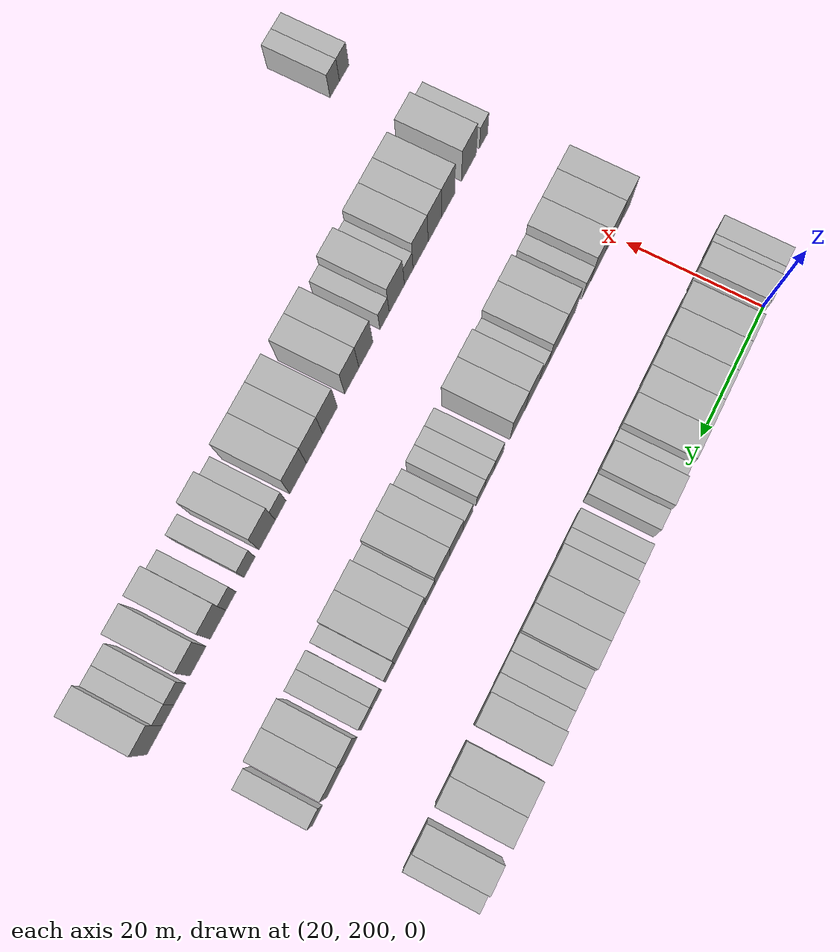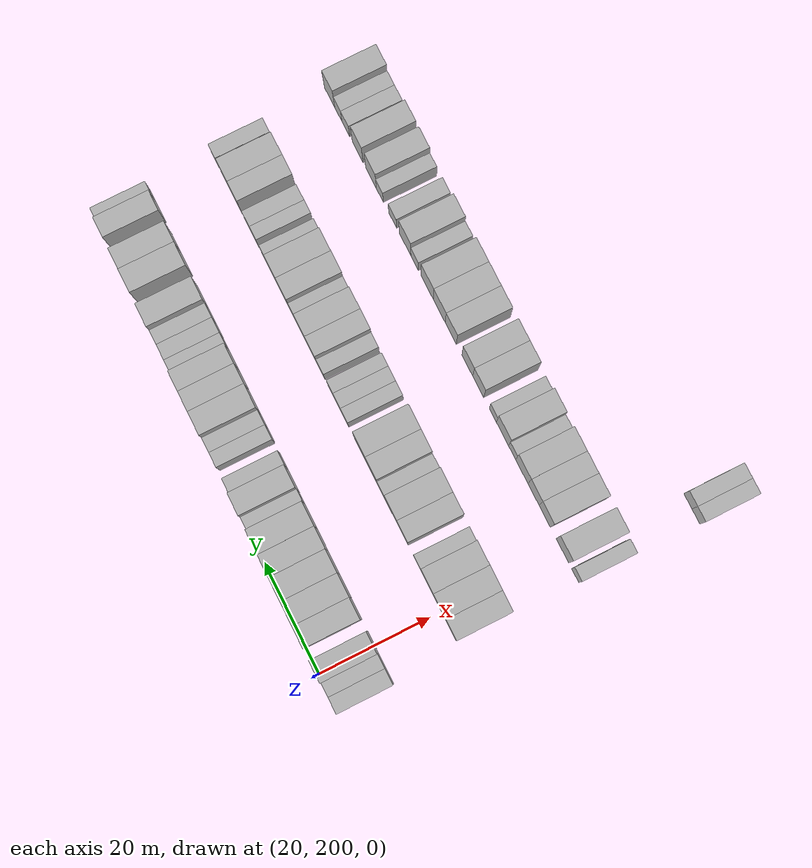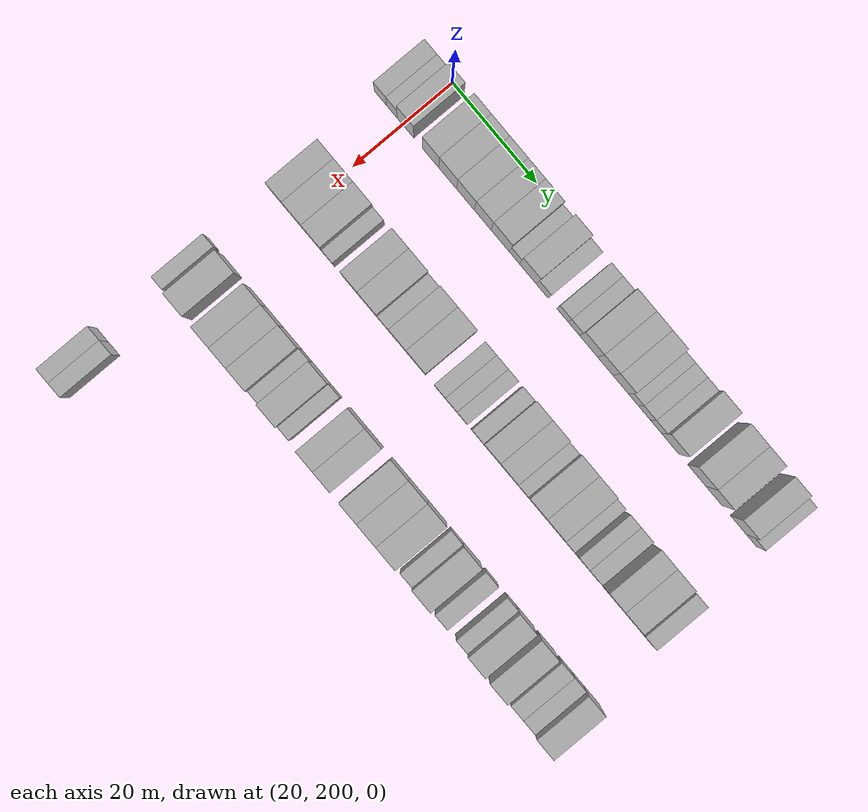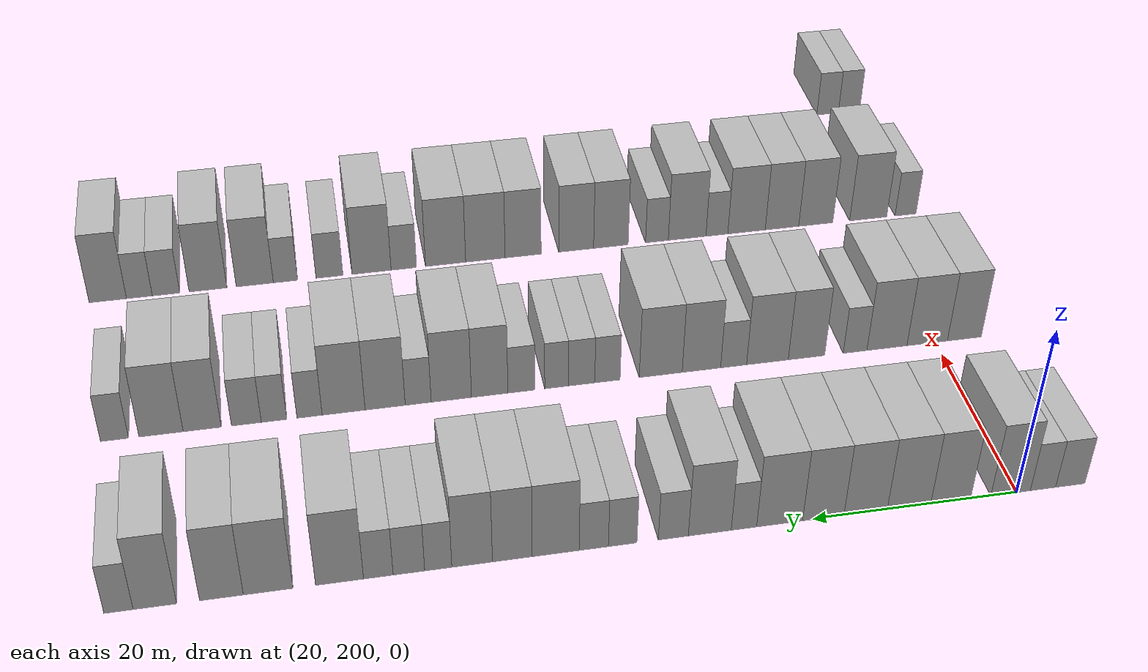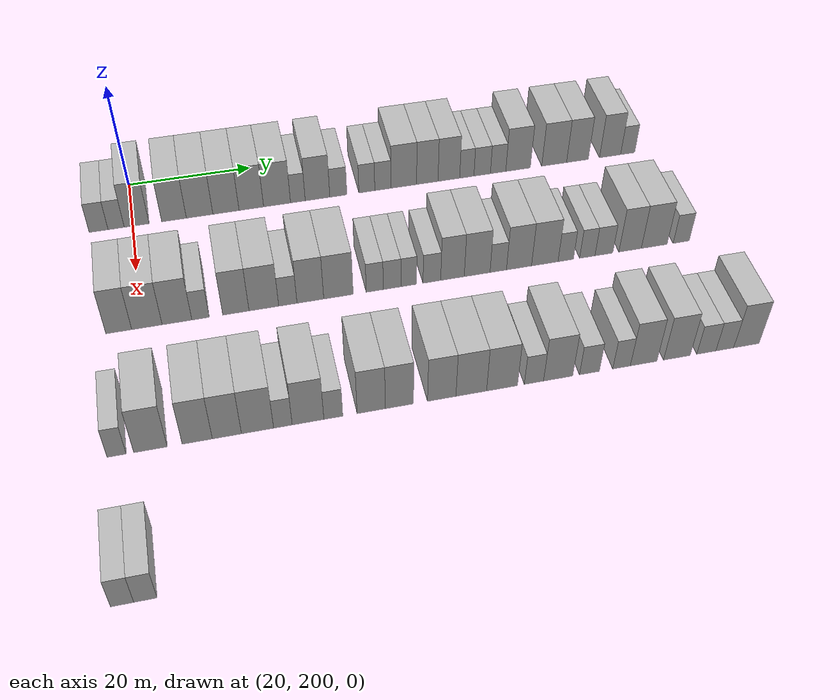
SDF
<sdf version="1.6">
 <world name="default">
  <model name="building_152">
   <static>1</static>
   <pose>25.0000 194.6948 0 0.000000 0.000000 0.000000</pose>
   <link name="link">
    <pose>0 0 3.00 0 0 0</pose>
    <collision name="collision"><geometry><box><size>10.0000 2.9457 6.0000</size></box></geometry></collision>
    <visual name="visual">
     <cast_shadows>0</cast_shadows>
     <geometry><box><size>10.0000 2.9457 6.0000</size></box></geometry>
     <material>
      <script>
       <uri>model://HANNAS_wall/materials/scripts</uri>
       <uri>model://HANNAS_wall/materials/textures</uri>
       <name>vrc/HANNAS_wall</name>
      </script>
     </material>
    </visual>
   </link>
  </model>
  <model name="building_153">
   <static>1</static>
   <pose>25.0000 197.4337 0 0.000000 0.000000 0.000000</pose>
   <link name="link">
    <pose>0 0 3.00 0 0 0</pose>
    <collision name="collision"><geometry><box><size>10.0000 2.5322 6.0000</size></box></geometry></collision>
    <visual name="visual">
     <cast_shadows>0</cast_shadows>
     <geometry><box><size>10.0000 2.5322 6.0000</size></box></geometry>
     <material>
      <script>
       <uri>model://HANNAS_wall/materials/scripts</uri>
       <uri>model://HANNAS_wall/materials/textures</uri>
       <name>vrc/HANNAS_wall</name>
      </script>
     </material>
    </visual>
   </link>
  </model>
  <model name="building_154">
   <static>1</static>
   <pose>25.0000 200.6647 0 0.000000 0.000000 0.000000</pose>
   <link name="link">
    <pose>0 0 4.50 0 0 0</pose>
    <collision name="collision"><geometry><box><size>10.0000 3.9297 9.0000</size></box></geometry></collision>
    <visual name="visual">
     <cast_shadows>0</cast_shadows>
     <geometry><box><size>10.0000 3.9297 9.0000</size></box></geometry>
     <material>
      <script>
       <uri>model://HANNAS_wall/materials/scripts</uri>
       <uri>model://HANNAS_wall/materials/textures</uri>
       <name>vrc/HANNAS_wall</name>
      </script>
     </material>
    </visual>
   </link>
  </model>
  <model name="building_155">
   <static>1</static>
   <pose>25.0000 206.5931 0 0.000000 0.000000 0.000000</pose>
   <link name="link">
    <pose>0 0 4.50 0 0 0</pose>
    <collision name="collision"><geometry><box><size>10.0000 3.9270 9.0000</size></box></geometry></collision>
    <visual name="visual">
     <cast_shadows>0</cast_shadows>
     <geometry><box><size>10.0000 3.9270 9.0000</size></box></geometry>
     <material>
      <script>
       <uri>model://HANNAS_wall/materials/scripts</uri>
       <uri>model://HANNAS_wall/materials/textures</uri>
       <name>vrc/HANNAS_wall</name>
      </script>
     </material>
    </visual>
   </link>
  </model>
  <model name="building_156">
   <static>1</static>
   <pose>25.0000 210.6839 0 0.000000 0.000000 0.000000</pose>
   <link name="link">
    <pose>0 0 4.50 0 0 0</pose>
    <collision name="collision"><geometry><box><size>10.0000 4.2545 9.0000</size></box></geometry></collision>
    <visual name="visual">
     <cast_shadows>0</cast_shadows>
     <geometry><box><size>10.0000 4.2545 9.0000</size></box></geometry>
     <material>
      <script>
       <uri>model://HANNAS_wall/materials/scripts</uri>
       <uri>model://HANNAS_wall/materials/textures</uri>
       <name>vrc/HANNAS_wall</name>
      </script>
     </material>
    </visual>
   </link>
  </model>
  <model name="building_157">
   <static>1</static>
   <pose>25.0000 214.9184 0 0.000000 0.000000 0.000000</pose>
   <link name="link">
    <pose>0 0 4.50 0 0 0</pose>
    <collision name="collision"><geometry><box><size>10.0000 4.2146 9.0000</size></box></geometry></collision>
    <visual name="visual">
     <cast_shadows>0</cast_shadows>
     <geometry><box><size>10.0000 4.2146 9.0000</size></box></geometry>
     <material>
      <script>
       <uri>model://HANNAS_wall/materials/scripts</uri>
       <uri>model://HANNAS_wall/materials/textures</uri>
       <name>vrc/HANNAS_wall</name>
      </script>
     </material>
    </visual>
   </link>
  </model>
  <model name="building_158">
   <static>1</static>
   <pose>25.0000 219.0183 0 0.000000 0.000000 0.000000</pose>
   <link name="link">
    <pose>0 0 4.50 0 0 0</pose>
    <collision name="collision"><geometry><box><size>10.0000 3.9852 9.0000</size></box></geometry></collision>
    <visual name="visual">
     <cast_shadows>0</cast_shadows>
     <geometry><box><size>10.0000 3.9852 9.0000</size></box></geometry>
     <material>
      <script>
       <uri>model://HANNAS_wall/materials/scripts</uri>
       <uri>model://HANNAS_wall/materials/textures</uri>
       <name>vrc/HANNAS_wall</name>
      </script>
     </material>
    </visual>
   </link>
  </model>
  <model name="building_159">
   <static>1</static>
   <pose>25.0000 223.2131 0 0.000000 0.000000 0.000000</pose>
   <link name="link">
    <pose>0 0 4.50 0 0 0</pose>
    <collision name="collision"><geometry><box><size>10.0000 4.4043 9.0000</size></box></geometry></collision>
    <visual name="visual">
     <cast_shadows>0</cast_shadows>
     <geometry><box><size>10.0000 4.4043 9.0000</size></box></geometry>
     <material>
      <script>
       <uri>model://HANNAS_wall/materials/scripts</uri>
       <uri>model://HANNAS_wall/materials/textures</uri>
       <name>vrc/HANNAS_wall</name>
      </script>
     </material>
    </visual>
   </link>
  </model>
  <model name="building_160">
   <static>1</static>
   <pose>25.0000 226.6207 0 0.000000 0.000000 0.000000</pose>
   <link name="link">
    <pose>0 0 3.00 0 0 0</pose>
    <collision name="collision"><geometry><box><size>10.0000 2.4109 6.0000</size></box></geometry></collision>
    <visual name="visual">
     <cast_shadows>0</cast_shadows>
     <geometry><box><size>10.0000 2.4109 6.0000</size></box></geometry>
     <material>
      <script>
       <uri>model://HANNAS_wall/materials/scripts</uri>
       <uri>model://HANNAS_wall/materials/textures</uri>
       <name>vrc/HANNAS_wall</name>
      </script>
     </material>
    </visual>
   </link>
  </model>
  <model name="building_161">
   <static>1</static>
   <pose>25.0000 229.8568 0 0.000000 0.000000 0.000000</pose>
   <link name="link">
    <pose>0 0 4.50 0 0 0</pose>
    <collision name="collision"><geometry><box><size>10.0000 4.0611 9.0000</size></box></geometry></collision>
    <visual name="visual">
     <cast_shadows>0</cast_shadows>
     <geometry><box><size>10.0000 4.0611 9.0000</size></box></geometry>
     <material>
      <script>
       <uri>model://HANNAS_wall/materials/scripts</uri>
       <uri>model://HANNAS_wall/materials/textures</uri>
       <name>vrc/HANNAS_wall</name>
      </script>
     </material>
    </visual>
   </link>
  </model>
  <model name="building_162">
   <static>1</static>
   <pose>25.0000 233.3012 0 0.000000 0.000000 0.000000</pose>
   <link name="link">
    <pose>0 0 3.00 0 0 0</pose>
    <collision name="collision"><geometry><box><size>10.0000 2.8277 6.0000</size></box></geometry></collision>
    <visual name="visual">
     <cast_shadows>0</cast_shadows>
     <geometry><box><size>10.0000 2.8277 6.0000</size></box></geometry>
     <material>
      <script>
       <uri>model://HANNAS_wall/materials/scripts</uri>
       <uri>model://HANNAS_wall/materials/textures</uri>
       <name>vrc/HANNAS_wall</name>
      </script>
     </material>
    </visual>
   </link>
  </model>
  <model name="building_163">
   <static>1</static>
   <pose>25.0000 238.0458 0 0.000000 0.000000 0.000000</pose>
   <link name="link">
    <pose>0 0 3.00 0 0 0</pose>
    <collision name="collision"><geometry><box><size>10.0000 2.6614 6.0000</size></box></geometry></collision>
    <visual name="visual">
     <cast_shadows>0</cast_shadows>
     <geometry><box><size>10.0000 2.6614 6.0000</size></box></geometry>
     <material>
      <script>
       <uri>model://HANNAS_wall/materials/scripts</uri>
       <uri>model://HANNAS_wall/materials/textures</uri>
       <name>vrc/HANNAS_wall</name>
      </script>
     </material>
    </visual>
   </link>
  </model>
  <model name="building_164">
   <static>1</static>
   <pose>25.0000 240.7328 0 0.000000 0.000000 0.000000</pose>
   <link name="link">
    <pose>0 0 3.00 0 0 0</pose>
    <collision name="collision"><geometry><box><size>10.0000 2.7127 6.0000</size></box></geometry></collision>
    <visual name="visual">
     <cast_shadows>0</cast_shadows>
     <geometry><box><size>10.0000 2.7127 6.0000</size></box></geometry>
     <material>
      <script>
       <uri>model://HANNAS_wall/materials/scripts</uri>
       <uri>model://HANNAS_wall/materials/textures</uri>
       <name>vrc/HANNAS_wall</name>
      </script>
     </material>
    </visual>
   </link>
  </model>
  <model name="building_165">
   <static>1</static>
   <pose>25.0000 244.2499 0 0.000000 0.000000 0.000000</pose>
   <link name="link">
    <pose>0 0 4.50 0 0 0</pose>
    <collision name="collision"><geometry><box><size>10.0000 4.3215 9.0000</size></box></geometry></collision>
    <visual name="visual">
     <cast_shadows>0</cast_shadows>
     <geometry><box><size>10.0000 4.3215 9.0000</size></box></geometry>
     <material>
      <script>
       <uri>model://HANNAS_wall/materials/scripts</uri>
       <uri>model://HANNAS_wall/materials/textures</uri>
       <name>vrc/HANNAS_wall</name>
      </script>
     </material>
    </visual>
   </link>
  </model>
  <model name="building_166">
   <static>1</static>
   <pose>25.0000 248.2321 0 0.000000 0.000000 0.000000</pose>
   <link name="link">
    <pose>0 0 4.50 0 0 0</pose>
    <collision name="collision"><geometry><box><size>10.0000 3.6429 9.0000</size></box></geometry></collision>
    <visual name="visual">
     <cast_shadows>0</cast_shadows>
     <geometry><box><size>10.0000 3.6429 9.0000</size></box></geometry>
     <material>
      <script>
       <uri>model://HANNAS_wall/materials/scripts</uri>
       <uri>model://HANNAS_wall/materials/textures</uri>
       <name>vrc/HANNAS_wall</name>
      </script>
     </material>
    </visual>
   </link>
  </model>
  <model name="building_167">
   <static>1</static>
   <pose>25.0000 251.9000 0 0.000000 0.000000 0.000000</pose>
   <link name="link">
    <pose>0 0 4.50 0 0 0</pose>
    <collision name="collision"><geometry><box><size>10.0000 3.6930 9.0000</size></box></geometry></collision>
    <visual name="visual">
     <cast_shadows>0</cast_shadows>
     <geometry><box><size>10.0000 3.6930 9.0000</size></box></geometry>
     <material>
      <script>
       <uri>model://HANNAS_wall/materials/scripts</uri>
       <uri>model://HANNAS_wall/materials/textures</uri>
       <name>vrc/HANNAS_wall</name>
      </script>
     </material>
    </visual>
   </link>
  </model>
  <model name="building_168">
   <static>1</static>
   <pose>25.0000 254.9734 0 0.000000 0.000000 0.000000</pose>
   <link name="link">
    <pose>0 0 3.00 0 0 0</pose>
    <collision name="collision"><geometry><box><size>10.0000 2.4537 6.0000</size></box></geometry></collision>
    <visual name="visual">
     <cast_shadows>0</cast_shadows>
     <geometry><box><size>10.0000 2.4537 6.0000</size></box></geometry>
     <material>
      <script>
       <uri>model://HANNAS_wall/materials/scripts</uri>
       <uri>model://HANNAS_wall/materials/textures</uri>
       <name>vrc/HANNAS_wall</name>
      </script>
     </material>
    </visual>
   </link>
  </model>
  <model name="building_169">
   <static>1</static>
   <pose>25.0000 257.6189 0 0.000000 0.000000 0.000000</pose>
   <link name="link">
    <pose>0 0 3.00 0 0 0</pose>
    <collision name="collision"><geometry><box><size>10.0000 2.8374 6.0000</size></box></geometry></collision>
    <visual name="visual">
     <cast_shadows>0</cast_shadows>
     <geometry><box><size>10.0000 2.8374 6.0000</size></box></geometry>
     <material>
      <script>
       <uri>model://HANNAS_wall/materials/scripts</uri>
       <uri>model://HANNAS_wall/materials/textures</uri>
       <name>vrc/HANNAS_wall</name>
      </script>
     </material>
    </visual>
   </link>
  </model>
  <model name="building_170">
   <static>1</static>
   <pose>25.0000 260.3642 0 0.000000 0.000000 0.000000</pose>
   <link name="link">
    <pose>0 0 3.00 0 0 0</pose>
    <collision name="collision"><geometry><box><size>10.0000 2.6532 6.0000</size></box></geometry></collision>
    <visual name="visual">
     <cast_shadows>0</cast_shadows>
     <geometry><box><size>10.0000 2.6532 6.0000</size></box></geometry>
     <material>
      <script>
       <uri>model://HANNAS_wall/materials/scripts</uri>
       <uri>model://HANNAS_wall/materials/textures</uri>
       <name>vrc/HANNAS_wall</name>
      </script>
     </material>
    </visual>
   </link>
  </model>
  <model name="building_171">
   <static>1</static>
   <pose>25.0000 263.8266 0 0.000000 0.000000 0.000000</pose>
   <link name="link">
    <pose>0 0 4.50 0 0 0</pose>
    <collision name="collision"><geometry><box><size>10.0000 4.2715 9.0000</size></box></geometry></collision>
    <visual name="visual">
     <cast_shadows>0</cast_shadows>
     <geometry><box><size>10.0000 4.2715 9.0000</size></box></geometry>
     <material>
      <script>
       <uri>model://HANNAS_wall/materials/scripts</uri>
       <uri>model://HANNAS_wall/materials/textures</uri>
       <name>vrc/HANNAS_wall</name>
      </script>
     </material>
    </visual>
   </link>
  </model>
  <model name="building_172">
   <static>1</static>
   <pose>25.0000 270.1438 0 0.000000 0.000000 0.000000</pose>
   <link name="link">
    <pose>0 0 4.50 0 0 0</pose>
    <collision name="collision"><geometry><box><size>10.0000 4.3629 9.0000</size></box></geometry></collision>
    <visual name="visual">
     <cast_shadows>0</cast_shadows>
     <geometry><box><size>10.0000 4.3629 9.0000</size></box></geometry>
     <material>
      <script>
       <uri>model://HANNAS_wall/materials/scripts</uri>
       <uri>model://HANNAS_wall/materials/textures</uri>
       <name>vrc/HANNAS_wall</name>
      </script>
     </material>
    </visual>
   </link>
  </model>
  <model name="building_173">
   <static>1</static>
   <pose>25.0000 274.2407 0 0.000000 0.000000 0.000000</pose>
   <link name="link">
    <pose>0 0 4.50 0 0 0</pose>
    <collision name="collision"><geometry><box><size>10.0000 3.8310 9.0000</size></box></geometry></collision>
    <visual name="visual">
     <cast_shadows>0</cast_shadows>
     <geometry><box><size>10.0000 3.8310 9.0000</size></box></geometry>
     <material>
      <script>
       <uri>model://HANNAS_wall/materials/scripts</uri>
       <uri>model://HANNAS_wall/materials/textures</uri>
       <name>vrc/HANNAS_wall</name>
      </script>
     </material>
    </visual>
   </link>
  </model>
  <model name="building_174">
   <static>1</static>
   <pose>25.0000 280.0328 0 0.000000 0.000000 0.000000</pose>
   <link name="link">
    <pose>0 0 4.50 0 0 0</pose>
    <collision name="collision"><geometry><box><size>10.0000 3.7532 9.0000</size></box></geometry></collision>
    <visual name="visual">
     <cast_shadows>0</cast_shadows>
     <geometry><box><size>10.0000 3.7532 9.0000</size></box></geometry>
     <material>
      <script>
       <uri>model://HANNAS_wall/materials/scripts</uri>
       <uri>model://HANNAS_wall/materials/textures</uri>
       <name>vrc/HANNAS_wall</name>
      </script>
     </material>
    </visual>
   </link>
  </model>
  <model name="building_175">
   <static>1</static>
   <pose>25.0000 283.1667 0 0.000000 0.000000 0.000000</pose>
   <link name="link">
    <pose>0 0 3.00 0 0 0</pose>
    <collision name="collision"><geometry><box><size>10.0000 2.5146 6.0000</size></box></geometry></collision>
    <visual name="visual">
     <cast_shadows>0</cast_shadows>
     <geometry><box><size>10.0000 2.5146 6.0000</size></box></geometry>
     <material>
      <script>
       <uri>model://HANNAS_wall/materials/scripts</uri>
       <uri>model://HANNAS_wall/materials/textures</uri>
       <name>vrc/HANNAS_wall</name>
      </script>
     </material>
    </visual>
   </link>
  </model>
  <model name="building_349">
   <static>1</static>
   <pose>47.0000 196.7995 0 0.000000 0.000000 0.000000</pose>
   <link name="link">
    <pose>0 0 4.50 0 0 0</pose>
    <collision name="collision"><geometry><box><size>10.0000 3.7332 9.0000</size></box></geometry></collision>
    <visual name="visual">
     <cast_shadows>0</cast_shadows>
     <geometry><box><size>10.0000 3.7332 9.0000</size></box></geometry>
     <material>
      <script>
       <uri>model://HANNAS_wall/materials/scripts</uri>
       <uri>model://HANNAS_wall/materials/textures</uri>
       <name>vrc/HANNAS_wall</name>
      </script>
     </material>
    </visual>
   </link>
  </model>
  <model name="building_350">
   <static>1</static>
   <pose>47.0000 200.8775 0 0.000000 0.000000 0.000000</pose>
   <link name="link">
    <pose>0 0 4.50 0 0 0</pose>
    <collision name="collision"><geometry><box><size>10.0000 4.4228 9.0000</size></box></geometry></collision>
    <visual name="visual">
     <cast_shadows>0</cast_shadows>
     <geometry><box><size>10.0000 4.4228 9.0000</size></box></geometry>
     <material>
      <script>
       <uri>model://HANNAS_wall/materials/scripts</uri>
       <uri>model://HANNAS_wall/materials/textures</uri>
       <name>vrc/HANNAS_wall</name>
      </script>
     </material>
    </visual>
   </link>
  </model>
  <model name="building_351">
   <static>1</static>
   <pose>47.0000 205.2637 0 0.000000 0.000000 0.000000</pose>
   <link name="link">
    <pose>0 0 4.50 0 0 0</pose>
    <collision name="collision"><geometry><box><size>10.0000 4.3495 9.0000</size></box></geometry></collision>
    <visual name="visual">
     <cast_shadows>0</cast_shadows>
     <geometry><box><size>10.0000 4.3495 9.0000</size></box></geometry>
     <material>
      <script>
       <uri>model://HANNAS_wall/materials/scripts</uri>
       <uri>model://HANNAS_wall/materials/textures</uri>
       <name>vrc/HANNAS_wall</name>
      </script>
     </material>
    </visual>
   </link>
  </model>
  <model name="building_352">
   <static>1</static>
   <pose>47.0000 208.7207 0 0.000000 0.000000 0.000000</pose>
   <link name="link">
    <pose>0 0 3.00 0 0 0</pose>
    <collision name="collision"><geometry><box><size>10.0000 2.5646 6.0000</size></box></geometry></collision>
    <visual name="visual">
     <cast_shadows>0</cast_shadows>
     <geometry><box><size>10.0000 2.5646 6.0000</size></box></geometry>
     <material>
      <script>
       <uri>model://HANNAS_wall/materials/scripts</uri>
       <uri>model://HANNAS_wall/materials/textures</uri>
       <name>vrc/HANNAS_wall</name>
      </script>
     </material>
    </visual>
   </link>
  </model>
  <model name="building_353">
   <static>1</static>
   <pose>47.0000 213.9542 0 0.000000 0.000000 0.000000</pose>
   <link name="link">
    <pose>0 0 4.50 0 0 0</pose>
    <collision name="collision"><geometry><box><size>10.0000 3.9022 9.0000</size></box></geometry></collision>
    <visual name="visual">
     <cast_shadows>0</cast_shadows>
     <geometry><box><size>10.0000 3.9022 9.0000</size></box></geometry>
     <material>
      <script>
       <uri>model://HANNAS_wall/materials/scripts</uri>
       <uri>model://HANNAS_wall/materials/textures</uri>
       <name>vrc/HANNAS_wall</name>
      </script>
     </material>
    </visual>
   </link>
  </model>
  <model name="building_354">
   <static>1</static>
   <pose>47.0000 218.1265 0 0.000000 0.000000 0.000000</pose>
   <link name="link">
    <pose>0 0 4.50 0 0 0</pose>
    <collision name="collision"><geometry><box><size>10.0000 4.4425 9.0000</size></box></geometry></collision>
    <visual name="visual">
     <cast_shadows>0</cast_shadows>
     <geometry><box><size>10.0000 4.4425 9.0000</size></box></geometry>
     <material>
      <script>
       <uri>model://HANNAS_wall/materials/scripts</uri>
       <uri>model://HANNAS_wall/materials/textures</uri>
       <name>vrc/HANNAS_wall</name>
      </script>
     </material>
    </visual>
   </link>
  </model>
  <model name="building_355">
   <static>1</static>
   <pose>47.0000 221.7229 0 0.000000 0.000000 0.000000</pose>
   <link name="link">
    <pose>0 0 3.00 0 0 0</pose>
    <collision name="collision"><geometry><box><size>10.0000 2.7503 6.0000</size></box></geometry></collision>
    <visual name="visual">
     <cast_shadows>0</cast_shadows>
     <geometry><box><size>10.0000 2.7503 6.0000</size></box></geometry>
     <material>
      <script>
       <uri>model://HANNAS_wall/materials/scripts</uri>
       <uri>model://HANNAS_wall/materials/textures</uri>
       <name>vrc/HANNAS_wall</name>
      </script>
     </material>
    </visual>
   </link>
  </model>
  <model name="building_356">
   <static>1</static>
   <pose>47.0000 225.1240 0 0.000000 0.000000 0.000000</pose>
   <link name="link">
    <pose>0 0 4.50 0 0 0</pose>
    <collision name="collision"><geometry><box><size>10.0000 4.0520 9.0000</size></box></geometry></collision>
    <visual name="visual">
     <cast_shadows>0</cast_shadows>
     <geometry><box><size>10.0000 4.0520 9.0000</size></box></geometry>
     <material>
      <script>
       <uri>model://HANNAS_wall/materials/scripts</uri>
       <uri>model://HANNAS_wall/materials/textures</uri>
       <name>vrc/HANNAS_wall</name>
      </script>
     </material>
    </visual>
   </link>
  </model>
  <model name="building_357">
   <static>1</static>
   <pose>47.0000 229.3949 0 0.000000 0.000000 0.000000</pose>
   <link name="link">
    <pose>0 0 4.50 0 0 0</pose>
    <collision name="collision"><geometry><box><size>10.0000 4.4898 9.0000</size></box></geometry></collision>
    <visual name="visual">
     <cast_shadows>0</cast_shadows>
     <geometry><box><size>10.0000 4.4898 9.0000</size></box></geometry>
     <material>
      <script>
       <uri>model://HANNAS_wall/materials/scripts</uri>
       <uri>model://HANNAS_wall/materials/textures</uri>
       <name>vrc/HANNAS_wall</name>
      </script>
     </material>
    </visual>
   </link>
  </model>
  <model name="building_358">
   <static>1</static>
   <pose>47.0000 234.9530 0 0.000000 0.000000 0.000000</pose>
   <link name="link">
    <pose>0 0 3.00 0 0 0</pose>
    <collision name="collision"><geometry><box><size>10.0000 2.6265 6.0000</size></box></geometry></collision>
    <visual name="visual">
     <cast_shadows>0</cast_shadows>
     <geometry><box><size>10.0000 2.6265 6.0000</size></box></geometry>
     <material>
      <script>
       <uri>model://HANNAS_wall/materials/scripts</uri>
       <uri>model://HANNAS_wall/materials/textures</uri>
       <name>vrc/HANNAS_wall</name>
      </script>
     </material>
    </visual>
   </link>
  </model>
  <model name="building_359">
   <static>1</static>
   <pose>47.0000 237.6304 0 0.000000 0.000000 0.000000</pose>
   <link name="link">
    <pose>0 0 3.00 0 0 0</pose>
    <collision name="collision"><geometry><box><size>10.0000 2.7283 6.0000</size></box></geometry></collision>
    <visual name="visual">
     <cast_shadows>0</cast_shadows>
     <geometry><box><size>10.0000 2.7283 6.0000</size></box></geometry>
     <material>
      <script>
       <uri>model://HANNAS_wall/materials/scripts</uri>
       <uri>model://HANNAS_wall/materials/textures</uri>
       <name>vrc/HANNAS_wall</name>
      </script>
     </material>
    </visual>
   </link>
  </model>
  <model name="building_360">
   <static>1</static>
   <pose>47.0000 240.2082 0 0.000000 0.000000 0.000000</pose>
   <link name="link">
    <pose>0 0 3.00 0 0 0</pose>
    <collision name="collision"><geometry><box><size>10.0000 2.4272 6.0000</size></box></geometry></collision>
    <visual name="visual">
     <cast_shadows>0</cast_shadows>
     <geometry><box><size>10.0000 2.4272 6.0000</size></box></geometry>
     <material>
      <script>
       <uri>model://HANNAS_wall/materials/scripts</uri>
       <uri>model://HANNAS_wall/materials/textures</uri>
       <name>vrc/HANNAS_wall</name>
      </script>
     </material>
    </visual>
   </link>
  </model>
  <model name="building_361">
   <static>1</static>
   <pose>47.0000 243.8046 0 0.000000 0.000000 0.000000</pose>
   <link name="link">
    <pose>0 0 3.00 0 0 0</pose>
    <collision name="collision"><geometry><box><size>10.0000 2.7657 6.0000</size></box></geometry></collision>
    <visual name="visual">
     <cast_shadows>0</cast_shadows>
     <geometry><box><size>10.0000 2.7657 6.0000</size></box></geometry>
     <material>
      <script>
       <uri>model://HANNAS_wall/materials/scripts</uri>
       <uri>model://HANNAS_wall/materials/textures</uri>
       <name>vrc/HANNAS_wall</name>
      </script>
     </material>
    </visual>
   </link>
  </model>
  <model name="building_362">
   <static>1</static>
   <pose>47.0000 247.0391 0 0.000000 0.000000 0.000000</pose>
   <link name="link">
    <pose>0 0 4.50 0 0 0</pose>
    <collision name="collision"><geometry><box><size>10.0000 3.7032 9.0000</size></box></geometry></collision>
    <visual name="visual">
     <cast_shadows>0</cast_shadows>
     <geometry><box><size>10.0000 3.7032 9.0000</size></box></geometry>
     <material>
      <script>
       <uri>model://HANNAS_wall/materials/scripts</uri>
       <uri>model://HANNAS_wall/materials/textures</uri>
       <name>vrc/HANNAS_wall</name>
      </script>
     </material>
    </visual>
   </link>
  </model>
  <model name="building_363">
   <static>1</static>
   <pose>47.0000 250.9276 0 0.000000 0.000000 0.000000</pose>
   <link name="link">
    <pose>0 0 4.50 0 0 0</pose>
    <collision name="collision"><geometry><box><size>10.0000 4.0739 9.0000</size></box></geometry></collision>
    <visual name="visual">
     <cast_shadows>0</cast_shadows>
     <geometry><box><size>10.0000 4.0739 9.0000</size></box></geometry>
     <material>
      <script>
       <uri>model://HANNAS_wall/materials/scripts</uri>
       <uri>model://HANNAS_wall/materials/textures</uri>
       <name>vrc/HANNAS_wall</name>
      </script>
     </material>
    </visual>
   </link>
  </model>
  <model name="building_364">
   <static>1</static>
   <pose>47.0000 254.2711 0 0.000000 0.000000 0.000000</pose>
   <link name="link">
    <pose>0 0 3.00 0 0 0</pose>
    <collision name="collision"><geometry><box><size>10.0000 2.6132 6.0000</size></box></geometry></collision>
    <visual name="visual">
     <cast_shadows>0</cast_shadows>
     <geometry><box><size>10.0000 2.6132 6.0000</size></box></geometry>
     <material>
      <script>
       <uri>model://HANNAS_wall/materials/scripts</uri>
       <uri>model://HANNAS_wall/materials/textures</uri>
       <name>vrc/HANNAS_wall</name>
      </script>
     </material>
    </visual>
   </link>
  </model>
  <model name="building_365">
   <static>1</static>
   <pose>47.0000 257.5822 0 0.000000 0.000000 0.000000</pose>
   <link name="link">
    <pose>0 0 4.50 0 0 0</pose>
    <collision name="collision"><geometry><box><size>10.0000 4.0089 9.0000</size></box></geometry></collision>
    <visual name="visual">
     <cast_shadows>0</cast_shadows>
     <geometry><box><size>10.0000 4.0089 9.0000</size></box></geometry>
     <material>
      <script>
       <uri>model://HANNAS_wall/materials/scripts</uri>
       <uri>model://HANNAS_wall/materials/textures</uri>
       <name>vrc/HANNAS_wall</name>
      </script>
     </material>
    </visual>
   </link>
  </model>
  <model name="building_366">
   <static>1</static>
   <pose>47.0000 261.7210 0 0.000000 0.000000 0.000000</pose>
   <link name="link">
    <pose>0 0 4.50 0 0 0</pose>
    <collision name="collision"><geometry><box><size>10.0000 4.2688 9.0000</size></box></geometry></collision>
    <visual name="visual">
     <cast_shadows>0</cast_shadows>
     <geometry><box><size>10.0000 4.2688 9.0000</size></box></geometry>
     <material>
      <script>
       <uri>model://HANNAS_wall/materials/scripts</uri>
       <uri>model://HANNAS_wall/materials/textures</uri>
       <name>vrc/HANNAS_wall</name>
      </script>
     </material>
    </visual>
   </link>
  </model>
  <model name="building_367">
   <static>1</static>
   <pose>47.0000 265.1017 0 0.000000 0.000000 0.000000</pose>
   <link name="link">
    <pose>0 0 3.00 0 0 0</pose>
    <collision name="collision"><geometry><box><size>10.0000 2.4928 6.0000</size></box></geometry></collision>
    <visual name="visual">
     <cast_shadows>0</cast_shadows>
     <geometry><box><size>10.0000 2.4928 6.0000</size></box></geometry>
     <material>
      <script>
       <uri>model://HANNAS_wall/materials/scripts</uri>
       <uri>model://HANNAS_wall/materials/textures</uri>
       <name>vrc/HANNAS_wall</name>
      </script>
     </material>
    </visual>
   </link>
  </model>
  <model name="building_368">
   <static>1</static>
   <pose>47.0000 268.5992 0 0.000000 0.000000 0.000000</pose>
   <link name="link">
    <pose>0 0 3.00 0 0 0</pose>
    <collision name="collision"><geometry><box><size>10.0000 2.5022 6.0000</size></box></geometry></collision>
    <visual name="visual">
     <cast_shadows>0</cast_shadows>
     <geometry><box><size>10.0000 2.5022 6.0000</size></box></geometry>
     <material>
      <script>
       <uri>model://HANNAS_wall/materials/scripts</uri>
       <uri>model://HANNAS_wall/materials/textures</uri>
       <name>vrc/HANNAS_wall</name>
      </script>
     </material>
    </visual>
   </link>
  </model>
  <model name="building_369">
   <static>1</static>
   <pose>47.0000 271.3085 0 0.000000 0.000000 0.000000</pose>
   <link name="link">
    <pose>0 0 3.00 0 0 0</pose>
    <collision name="collision"><geometry><box><size>10.0000 2.9163 6.0000</size></box></geometry></collision>
    <visual name="visual">
     <cast_shadows>0</cast_shadows>
     <geometry><box><size>10.0000 2.9163 6.0000</size></box></geometry>
     <material>
      <script>
       <uri>model://HANNAS_wall/materials/scripts</uri>
       <uri>model://HANNAS_wall/materials/textures</uri>
       <name>vrc/HANNAS_wall</name>
      </script>
     </material>
    </visual>
   </link>
  </model>
  <model name="building_370">
   <static>1</static>
   <pose>47.0000 275.6123 0 0.000000 0.000000 0.000000</pose>
   <link name="link">
    <pose>0 0 4.50 0 0 0</pose>
    <collision name="collision"><geometry><box><size>10.0000 3.6913 9.0000</size></box></geometry></collision>
    <visual name="visual">
     <cast_shadows>0</cast_shadows>
     <geometry><box><size>10.0000 3.6913 9.0000</size></box></geometry>
     <material>
      <script>
       <uri>model://HANNAS_wall/materials/scripts</uri>
       <uri>model://HANNAS_wall/materials/textures</uri>
       <name>vrc/HANNAS_wall</name>
      </script>
     </material>
    </visual>
   </link>
  </model>
  <model name="building_371">
   <static>1</static>
   <pose>47.0000 279.5938 0 0.000000 0.000000 0.000000</pose>
   <link name="link">
    <pose>0 0 4.50 0 0 0</pose>
    <collision name="collision"><geometry><box><size>10.0000 4.2717 9.0000</size></box></geometry></collision>
    <visual name="visual">
     <cast_shadows>0</cast_shadows>
     <geometry><box><size>10.0000 4.2717 9.0000</size></box></geometry>
     <material>
      <script>
       <uri>model://HANNAS_wall/materials/scripts</uri>
       <uri>model://HANNAS_wall/materials/textures</uri>
       <name>vrc/HANNAS_wall</name>
      </script>
     </material>
    </visual>
   </link>
  </model>
  <model name="building_372">
   <static>1</static>
   <pose>47.0000 284.0728 0 0.000000 0.000000 0.000000</pose>
   <link name="link">
    <pose>0 0 3.00 0 0 0</pose>
    <collision name="collision"><geometry><box><size>10.0000 2.6862 6.0000</size></box></geometry></collision>
    <visual name="visual">
     <cast_shadows>0</cast_shadows>
     <geometry><box><size>10.0000 2.6862 6.0000</size></box></geometry>
     <material>
      <script>
       <uri>model://HANNAS_wall/materials/scripts</uri>
       <uri>model://HANNAS_wall/materials/textures</uri>
       <name>vrc/HANNAS_wall</name>
      </script>
     </material>
    </visual>
   </link>
  </model>
  <model name="building_536">
   <static>1</static>
   <pose>69.0000 195.4513 0 0.000000 0.000000 0.000000</pose>
   <link name="link">
    <pose>0 0 3.00 0 0 0</pose>
    <collision name="collision"><geometry><box><size>10.0000 2.5272 6.0000</size></box></geometry></collision>
    <visual name="visual">
     <cast_shadows>0</cast_shadows>
     <geometry><box><size>10.0000 2.5272 6.0000</size></box></geometry>
     <material>
      <script>
       <uri>model://HANNAS_wall/materials/scripts</uri>
       <uri>model://HANNAS_wall/materials/textures</uri>
       <name>vrc/HANNAS_wall</name>
      </script>
     </material>
    </visual>
   </link>
  </model>
  <model name="building_537">
   <static>1</static>
   <pose>69.0000 199.9328 0 0.000000 0.000000 0.000000</pose>
   <link name="link">
    <pose>0 0 4.50 0 0 0</pose>
    <collision name="collision"><geometry><box><size>10.0000 4.4358 9.0000</size></box></geometry></collision>
    <visual name="visual">
     <cast_shadows>0</cast_shadows>
     <geometry><box><size>10.0000 4.4358 9.0000</size></box></geometry>
     <material>
      <script>
       <uri>model://HANNAS_wall/materials/scripts</uri>
       <uri>model://HANNAS_wall/materials/textures</uri>
       <name>vrc/HANNAS_wall</name>
      </script>
     </material>
    </visual>
   </link>
  </model>
  <model name="building_538">
   <static>1</static>
   <pose>69.0000 206.1733 0 0.000000 0.000000 0.000000</pose>
   <link name="link">
    <pose>0 0 4.50 0 0 0</pose>
    <collision name="collision"><geometry><box><size>10.0000 4.0453 9.0000</size></box></geometry></collision>
    <visual name="visual">
     <cast_shadows>0</cast_shadows>
     <geometry><box><size>10.0000 4.0453 9.0000</size></box></geometry>
     <material>
      <script>
       <uri>model://HANNAS_wall/materials/scripts</uri>
       <uri>model://HANNAS_wall/materials/textures</uri>
       <name>vrc/HANNAS_wall</name>
      </script>
     </material>
    </visual>
   </link>
  </model>
  <model name="building_539">
   <static>1</static>
   <pose>69.0000 210.1672 0 0.000000 0.000000 0.000000</pose>
   <link name="link">
    <pose>0 0 4.50 0 0 0</pose>
    <collision name="collision"><geometry><box><size>10.0000 3.9425 9.0000</size></box></geometry></collision>
    <visual name="visual">
     <cast_shadows>0</cast_shadows>
     <geometry><box><size>10.0000 3.9425 9.0000</size></box></geometry>
     <material>
      <script>
       <uri>model://HANNAS_wall/materials/scripts</uri>
       <uri>model://HANNAS_wall/materials/textures</uri>
       <name>vrc/HANNAS_wall</name>
      </script>
     </material>
    </visual>
   </link>
  </model>
  <model name="building_540">
   <static>1</static>
   <pose>69.0000 214.3302 0 0.000000 0.000000 0.000000</pose>
   <link name="link">
    <pose>0 0 4.50 0 0 0</pose>
    <collision name="collision"><geometry><box><size>10.0000 4.3834 9.0000</size></box></geometry></collision>
    <visual name="visual">
     <cast_shadows>0</cast_shadows>
     <geometry><box><size>10.0000 4.3834 9.0000</size></box></geometry>
     <material>
      <script>
       <uri>model://HANNAS_wall/materials/scripts</uri>
       <uri>model://HANNAS_wall/materials/textures</uri>
       <name>vrc/HANNAS_wall</name>
      </script>
     </material>
    </visual>
   </link>
  </model>
  <model name="building_541">
   <static>1</static>
   <pose>69.0000 217.7942 0 0.000000 0.000000 0.000000</pose>
   <link name="link">
    <pose>0 0 3.00 0 0 0</pose>
    <collision name="collision"><geometry><box><size>10.0000 2.5447 6.0000</size></box></geometry></collision>
    <visual name="visual">
     <cast_shadows>0</cast_shadows>
     <geometry><box><size>10.0000 2.5447 6.0000</size></box></geometry>
     <material>
      <script>
       <uri>model://HANNAS_wall/materials/scripts</uri>
       <uri>model://HANNAS_wall/materials/textures</uri>
       <name>vrc/HANNAS_wall</name>
      </script>
     </material>
    </visual>
   </link>
  </model>
  <model name="building_542">
   <static>1</static>
   <pose>69.0000 221.2515 0 0.000000 0.000000 0.000000</pose>
   <link name="link">
    <pose>0 0 4.50 0 0 0</pose>
    <collision name="collision"><geometry><box><size>10.0000 4.3698 9.0000</size></box></geometry></collision>
    <visual name="visual">
     <cast_shadows>0</cast_shadows>
     <geometry><box><size>10.0000 4.3698 9.0000</size></box></geometry>
     <material>
      <script>
       <uri>model://HANNAS_wall/materials/scripts</uri>
       <uri>model://HANNAS_wall/materials/textures</uri>
       <name>vrc/HANNAS_wall</name>
      </script>
     </material>
    </visual>
   </link>
  </model>
  <model name="building_543">
   <static>1</static>
   <pose>69.0000 224.7510 0 0.000000 0.000000 0.000000</pose>
   <link name="link">
    <pose>0 0 3.00 0 0 0</pose>
    <collision name="collision"><geometry><box><size>10.0000 2.6292 6.0000</size></box></geometry></collision>
    <visual name="visual">
     <cast_shadows>0</cast_shadows>
     <geometry><box><size>10.0000 2.6292 6.0000</size></box></geometry>
     <material>
      <script>
       <uri>model://HANNAS_wall/materials/scripts</uri>
       <uri>model://HANNAS_wall/materials/textures</uri>
       <name>vrc/HANNAS_wall</name>
      </script>
     </material>
    </visual>
   </link>
  </model>
  <model name="building_544">
   <static>1</static>
   <pose>69.0000 230.0430 0 0.000000 0.000000 0.000000</pose>
   <link name="link">
    <pose>0 0 4.50 0 0 0</pose>
    <collision name="collision"><geometry><box><size>10.0000 3.9548 9.0000</size></box></geometry></collision>
    <visual name="visual">
     <cast_shadows>0</cast_shadows>
     <geometry><box><size>10.0000 3.9548 9.0000</size></box></geometry>
     <material>
      <script>
       <uri>model://HANNAS_wall/materials/scripts</uri>
       <uri>model://HANNAS_wall/materials/textures</uri>
       <name>vrc/HANNAS_wall</name>
      </script>
     </material>
    </visual>
   </link>
  </model>
  <model name="building_545">
   <static>1</static>
   <pose>69.0000 234.0054 0 0.000000 0.000000 0.000000</pose>
   <link name="link">
    <pose>0 0 4.50 0 0 0</pose>
    <collision name="collision"><geometry><box><size>10.0000 3.9701 9.0000</size></box></geometry></collision>
    <visual name="visual">
     <cast_shadows>0</cast_shadows>
     <geometry><box><size>10.0000 3.9701 9.0000</size></box></geometry>
     <material>
      <script>
       <uri>model://HANNAS_wall/materials/scripts</uri>
       <uri>model://HANNAS_wall/materials/textures</uri>
       <name>vrc/HANNAS_wall</name>
      </script>
     </material>
    </visual>
   </link>
  </model>
  <model name="building_546">
   <static>1</static>
   <pose>69.0000 240.0217 0 0.000000 0.000000 0.000000</pose>
   <link name="link">
    <pose>0 0 4.50 0 0 0</pose>
    <collision name="collision"><geometry><box><size>10.0000 4.0624 9.0000</size></box></geometry></collision>
    <visual name="visual">
     <cast_shadows>0</cast_shadows>
     <geometry><box><size>10.0000 4.0624 9.0000</size></box></geometry>
     <material>
      <script>
       <uri>model://HANNAS_wall/materials/scripts</uri>
       <uri>model://HANNAS_wall/materials/textures</uri>
       <name>vrc/HANNAS_wall</name>
      </script>
     </material>
    </visual>
   </link>
  </model>
  <model name="building_547">
   <static>1</static>
   <pose>69.0000 244.2610 0 0.000000 0.000000 0.000000</pose>
   <link name="link">
    <pose>0 0 4.50 0 0 0</pose>
    <collision name="collision"><geometry><box><size>10.0000 4.4162 9.0000</size></box></geometry></collision>
    <visual name="visual">
     <cast_shadows>0</cast_shadows>
     <geometry><box><size>10.0000 4.4162 9.0000</size></box></geometry>
     <material>
      <script>
       <uri>model://HANNAS_wall/materials/scripts</uri>
       <uri>model://HANNAS_wall/materials/textures</uri>
       <name>vrc/HANNAS_wall</name>
      </script>
     </material>
    </visual>
   </link>
  </model>
  <model name="building_548">
   <static>1</static>
   <pose>69.0000 248.7066 0 0.000000 0.000000 0.000000</pose>
   <link name="link">
    <pose>0 0 4.50 0 0 0</pose>
    <collision name="collision"><geometry><box><size>10.0000 4.4748 9.0000</size></box></geometry></collision>
    <visual name="visual">
     <cast_shadows>0</cast_shadows>
     <geometry><box><size>10.0000 4.4748 9.0000</size></box></geometry>
     <material>
      <script>
       <uri>model://HANNAS_wall/materials/scripts</uri>
       <uri>model://HANNAS_wall/materials/textures</uri>
       <name>vrc/HANNAS_wall</name>
      </script>
     </material>
    </visual>
   </link>
  </model>
  <model name="building_549">
   <static>1</static>
   <pose>69.0000 253.3502 0 0.000000 0.000000 0.000000</pose>
   <link name="link">
    <pose>0 0 3.00 0 0 0</pose>
    <collision name="collision"><geometry><box><size>10.0000 2.8125 6.0000</size></box></geometry></collision>
    <visual name="visual">
     <cast_shadows>0</cast_shadows>
     <geometry><box><size>10.0000 2.8125 6.0000</size></box></geometry>
     <material>
      <script>
       <uri>model://HANNAS_wall/materials/scripts</uri>
       <uri>model://HANNAS_wall/materials/textures</uri>
       <name>vrc/HANNAS_wall</name>
      </script>
     </material>
    </visual>
   </link>
  </model>
  <model name="building_550">
   <static>1</static>
   <pose>69.0000 256.9059 0 0.000000 0.000000 0.000000</pose>
   <link name="link">
    <pose>0 0 4.50 0 0 0</pose>
    <collision name="collision"><geometry><box><size>10.0000 4.2988 9.0000</size></box></geometry></collision>
    <visual name="visual">
     <cast_shadows>0</cast_shadows>
     <geometry><box><size>10.0000 4.2988 9.0000</size></box></geometry>
     <material>
      <script>
       <uri>model://HANNAS_wall/materials/scripts</uri>
       <uri>model://HANNAS_wall/materials/textures</uri>
       <name>vrc/HANNAS_wall</name>
      </script>
     </material>
    </visual>
   </link>
  </model>
  <model name="building_551">
   <static>1</static>
   <pose>69.0000 261.5315 0 0.000000 0.000000 0.000000</pose>
   <link name="link">
    <pose>0 0 3.00 0 0 0</pose>
    <collision name="collision"><geometry><box><size>10.0000 2.9524 6.0000</size></box></geometry></collision>
    <visual name="visual">
     <cast_shadows>0</cast_shadows>
     <geometry><box><size>10.0000 2.9524 6.0000</size></box></geometry>
     <material>
      <script>
       <uri>model://HANNAS_wall/materials/scripts</uri>
       <uri>model://HANNAS_wall/materials/textures</uri>
       <name>vrc/HANNAS_wall</name>
      </script>
     </material>
    </visual>
   </link>
  </model>
  <model name="building_552">
   <static>1</static>
   <pose>69.0000 266.3239 0 0.000000 0.000000 0.000000</pose>
   <link name="link">
    <pose>0 0 3.00 0 0 0</pose>
    <collision name="collision"><geometry><box><size>10.0000 2.6325 6.0000</size></box></geometry></collision>
    <visual name="visual">
     <cast_shadows>0</cast_shadows>
     <geometry><box><size>10.0000 2.6325 6.0000</size></box></geometry>
     <material>
      <script>
       <uri>model://HANNAS_wall/materials/scripts</uri>
       <uri>model://HANNAS_wall/materials/textures</uri>
       <name>vrc/HANNAS_wall</name>
      </script>
     </material>
    </visual>
   </link>
  </model>
  <model name="building_553">
   <static>1</static>
   <pose>69.0000 269.6458 0 0.000000 0.000000 0.000000</pose>
   <link name="link">
    <pose>0 0 4.50 0 0 0</pose>
    <collision name="collision"><geometry><box><size>10.0000 4.0113 9.0000</size></box></geometry></collision>
    <visual name="visual">
     <cast_shadows>0</cast_shadows>
     <geometry><box><size>10.0000 4.0113 9.0000</size></box></geometry>
     <material>
      <script>
       <uri>model://HANNAS_wall/materials/scripts</uri>
       <uri>model://HANNAS_wall/materials/textures</uri>
       <name>vrc/HANNAS_wall</name>
      </script>
     </material>
    </visual>
   </link>
  </model>
  <model name="building_554">
   <static>1</static>
   <pose>69.0000 274.6796 0 0.000000 0.000000 0.000000</pose>
   <link name="link">
    <pose>0 0 4.50 0 0 0</pose>
    <collision name="collision"><geometry><box><size>10.0000 4.0561 9.0000</size></box></geometry></collision>
    <visual name="visual">
     <cast_shadows>0</cast_shadows>
     <geometry><box><size>10.0000 4.0561 9.0000</size></box></geometry>
     <material>
      <script>
       <uri>model://HANNAS_wall/materials/scripts</uri>
       <uri>model://HANNAS_wall/materials/textures</uri>
       <name>vrc/HANNAS_wall</name>
      </script>
     </material>
    </visual>
   </link>
  </model>
  <model name="building_555">
   <static>1</static>
   <pose>69.0000 279.1736 0 0.000000 0.000000 0.000000</pose>
   <link name="link">
    <pose>0 0 3.00 0 0 0</pose>
    <collision name="collision"><geometry><box><size>10.0000 2.9321 6.0000</size></box></geometry></collision>
    <visual name="visual">
     <cast_shadows>0</cast_shadows>
     <geometry><box><size>10.0000 2.9321 6.0000</size></box></geometry>
     <material>
      <script>
       <uri>model://HANNAS_wall/materials/scripts</uri>
       <uri>model://HANNAS_wall/materials/textures</uri>
       <name>vrc/HANNAS_wall</name>
      </script>
     </material>
    </visual>
   </link>
  </model>
  <model name="building_556">
   <static>1</static>
   <pose>69.0000 282.0082 0 0.000000 0.000000 0.000000</pose>
   <link name="link">
    <pose>0 0 3.00 0 0 0</pose>
    <collision name="collision"><geometry><box><size>10.0000 2.7370 6.0000</size></box></geometry></collision>
    <visual name="visual">
     <cast_shadows>0</cast_shadows>
     <geometry><box><size>10.0000 2.7370 6.0000</size></box></geometry>
     <material>
      <script>
       <uri>model://HANNAS_wall/materials/scripts</uri>
       <uri>model://HANNAS_wall/materials/textures</uri>
       <name>vrc/HANNAS_wall</name>
      </script>
     </material>
    </visual>
   </link>
  </model>
  <model name="building_557">
   <static>1</static>
   <pose>69.0000 285.3454 0 0.000000 0.000000 0.000000</pose>
   <link name="link">
    <pose>0 0 4.50 0 0 0</pose>
    <collision name="collision"><geometry><box><size>10.0000 3.9375 9.0000</size></box></geometry></collision>
    <visual name="visual">
     <cast_shadows>0</cast_shadows>
     <geometry><box><size>10.0000 3.9375 9.0000</size></box></geometry>
     <material>
      <script>
       <uri>model://HANNAS_wall/materials/scripts</uri>
       <uri>model://HANNAS_wall/materials/textures</uri>
       <name>vrc/HANNAS_wall</name>
      </script>
     </material>
    </visual>
   </link>
  </model>
  <model name="building_722">
   <static>1</static>
   <pose>91.0000 195.0752 0 0.000000 0.000000 0.000000</pose>
   <link name="link">
    <pose>0 0 3.00 0 0 0</pose>
    <collision name="collision"><geometry><box><size>10.0000 2.7680 6.0000</size></box></geometry></collision>
    <visual name="visual">
     <cast_shadows>0</cast_shadows>
     <geometry><box><size>10.0000 2.7680 6.0000</size></box></geometry>
     <material>
      <script>
       <uri>model://HANNAS_wall/materials/scripts</uri>
       <uri>model://HANNAS_wall/materials/textures</uri>
       <name>vrc/HANNAS_wall</name>
      </script>
     </material>
    </visual>
   </link>
  </model>
  <model name="building_723">
   <static>1</static>
   <pose>91.0000 197.8541 0 0.000000 0.000000 0.000000</pose>
   <link name="link">
    <pose>0 0 3.00 0 0 0</pose>
    <collision name="collision"><geometry><box><size>10.0000 2.7898 6.0000</size></box></geometry></collision>
    <visual name="visual">
     <cast_shadows>0</cast_shadows>
     <geometry><box><size>10.0000 2.7898 6.0000</size></box></geometry>
     <material>
      <script>
       <uri>model://HANNAS_wall/materials/scripts</uri>
       <uri>model://HANNAS_wall/materials/textures</uri>
       <name>vrc/HANNAS_wall</name>
      </script>
     </material>
    </visual>
   </link>
  </model>
 </world>
</sdf>
